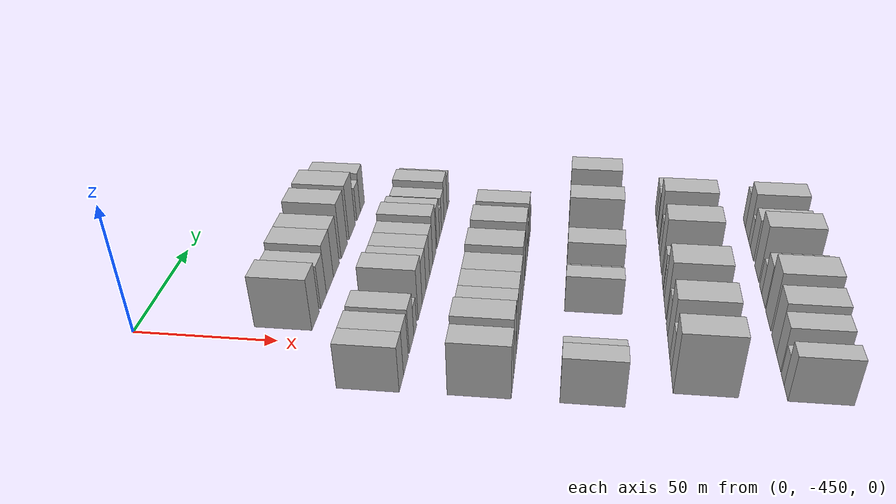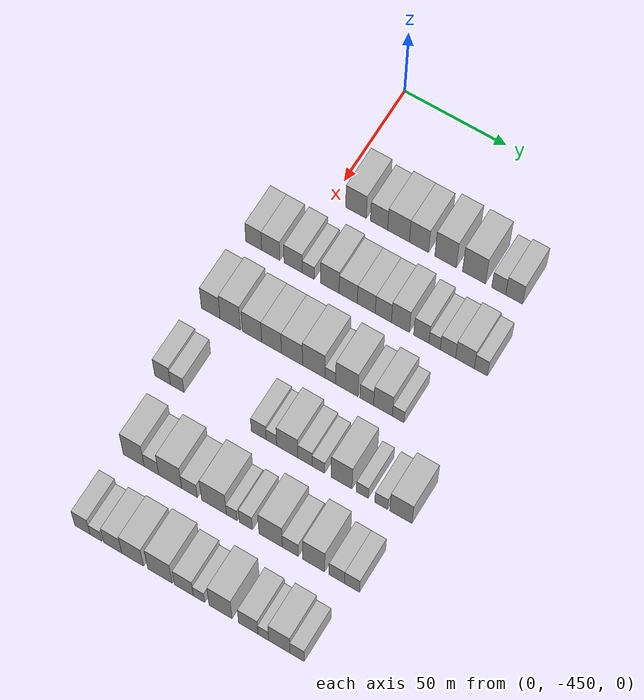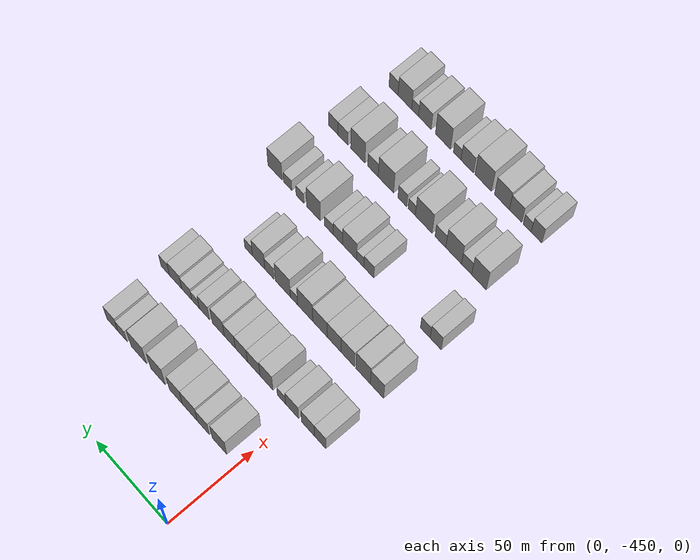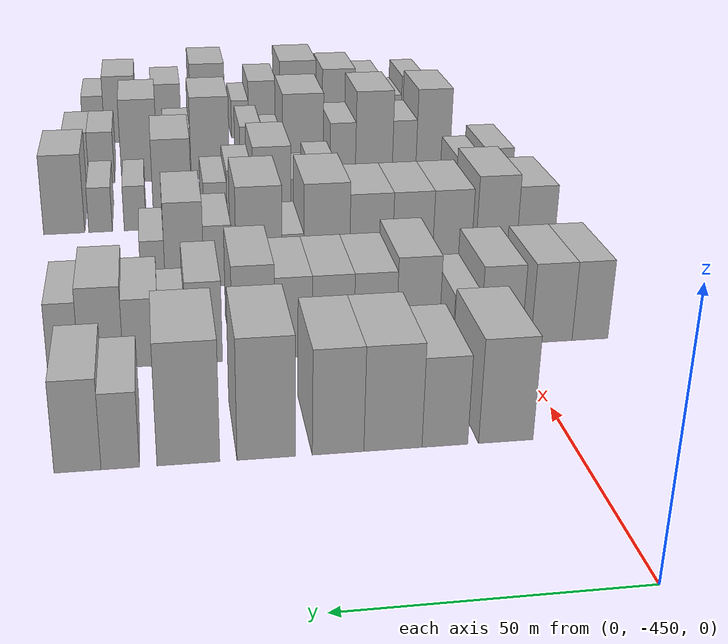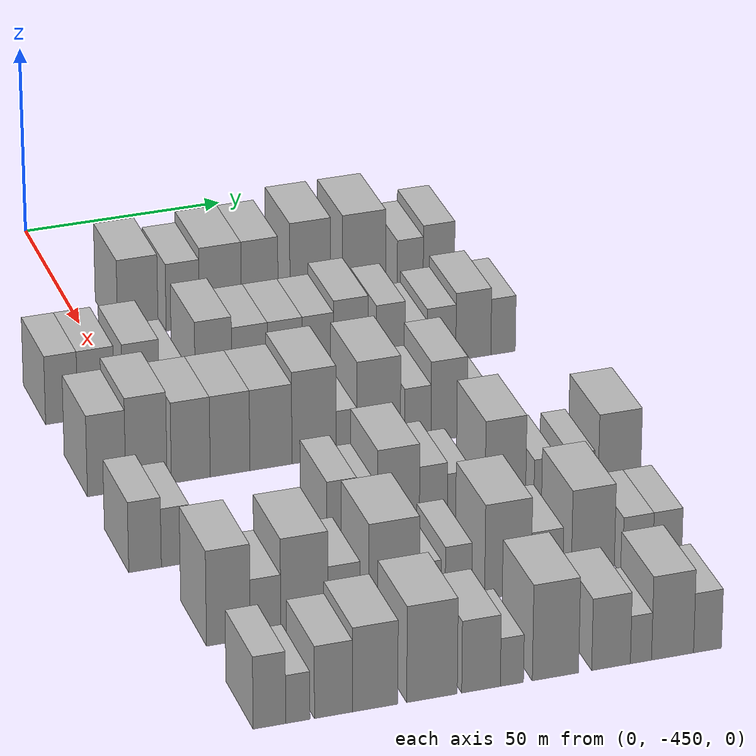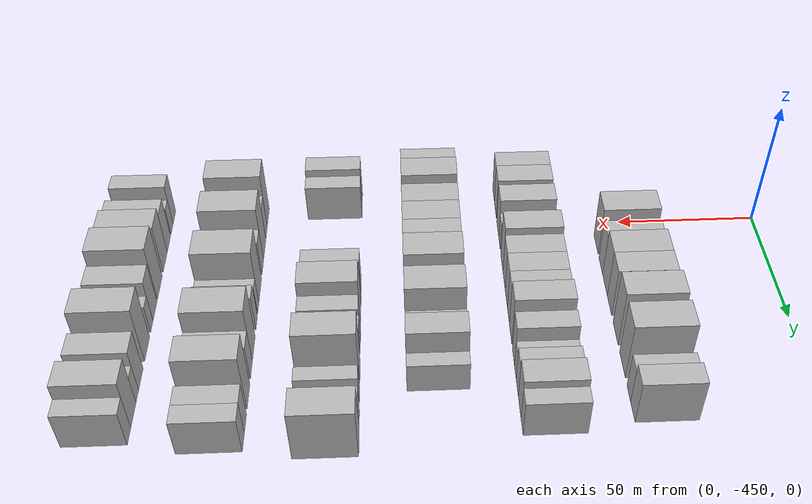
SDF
<sdf version="1.6">
 <world name="default">
  <model name="building_11">
   <static>1</static>
   <pose>50.0000 -438.2987 0 0.000000 0.000000 0.000000</pose>
   <link name="link">
    <pose>0 0 10.50 0 0 0</pose>
    <collision name="collision"><geometry><box><size>20.0000 10.0197 21.0000</size></box></geometry></collision>
    <visual name="visual">
     <cast_shadows>0</cast_shadows>
     <geometry><box><size>20.0000 10.0197 21.0000</size></box></geometry>
     <material>
      <script>
       <uri>model://HANNAS_wall/materials/scripts</uri>
       <uri>model://HANNAS_wall/materials/textures</uri>
       <name>vrc/HANNAS_wall</name>
      </script>
     </material>
    </visual>
   </link>
  </model>
  <model name="building_12">
   <static>1</static>
   <pose>50.0000 -427.1244 0 0.000000 0.000000 0.000000</pose>
   <link name="link">
    <pose>0 0 9.00 0 0 0</pose>
    <collision name="collision"><geometry><box><size>20.0000 8.3288 18.0000</size></box></geometry></collision>
    <visual name="visual">
     <cast_shadows>0</cast_shadows>
     <geometry><box><size>20.0000 8.3288 18.0000</size></box></geometry>
     <material>
      <script>
       <uri>model://HANNAS_wall/materials/scripts</uri>
       <uri>model://HANNAS_wall/materials/textures</uri>
       <name>vrc/HANNAS_wall</name>
      </script>
     </material>
    </visual>
   </link>
  </model>
  <model name="building_13">
   <static>1</static>
   <pose>50.0000 -417.7253 0 0.000000 0.000000 0.000000</pose>
   <link name="link">
    <pose>0 0 10.50 0 0 0</pose>
    <collision name="collision"><geometry><box><size>20.0000 10.4695 21.0000</size></box></geometry></collision>
    <visual name="visual">
     <cast_shadows>0</cast_shadows>
     <geometry><box><size>20.0000 10.4695 21.0000</size></box></geometry>
     <material>
      <script>
       <uri>model://HANNAS_wall/materials/scripts</uri>
       <uri>model://HANNAS_wall/materials/textures</uri>
       <name>vrc/HANNAS_wall</name>
      </script>
     </material>
    </visual>
   </link>
  </model>
  <model name="building_14">
   <static>1</static>
   <pose>50.0000 -407.8832 0 0.000000 0.000000 0.000000</pose>
   <link name="link">
    <pose>0 0 10.50 0 0 0</pose>
    <collision name="collision"><geometry><box><size>20.0000 9.2147 21.0000</size></box></geometry></collision>
    <visual name="visual">
     <cast_shadows>0</cast_shadows>
     <geometry><box><size>20.0000 9.2147 21.0000</size></box></geometry>
     <material>
      <script>
       <uri>model://HANNAS_wall/materials/scripts</uri>
       <uri>model://HANNAS_wall/materials/textures</uri>
       <name>vrc/HANNAS_wall</name>
      </script>
     </material>
    </visual>
   </link>
  </model>
  <model name="building_15">
   <static>1</static>
   <pose>50.0000 -395.1461 0 0.000000 0.000000 0.000000</pose>
   <link name="link">
    <pose>0 0 12.00 0 0 0</pose>
    <collision name="collision"><geometry><box><size>20.0000 10.2595 24.0000</size></box></geometry></collision>
    <visual name="visual">
     <cast_shadows>0</cast_shadows>
     <geometry><box><size>20.0000 10.2595 24.0000</size></box></geometry>
     <material>
      <script>
       <uri>model://HANNAS_wall/materials/scripts</uri>
       <uri>model://HANNAS_wall/materials/textures</uri>
       <name>vrc/HANNAS_wall</name>
      </script>
     </material>
    </visual>
   </link>
  </model>
  <model name="building_16">
   <static>1</static>
   <pose>50.0000 -381.5667 0 0.000000 0.000000 0.000000</pose>
   <link name="link">
    <pose>0 0 12.00 0 0 0</pose>
    <collision name="collision"><geometry><box><size>20.0000 10.8994 24.0000</size></box></geometry></collision>
    <visual name="visual">
     <cast_shadows>0</cast_shadows>
     <geometry><box><size>20.0000 10.8994 24.0000</size></box></geometry>
     <material>
      <script>
       <uri>model://HANNAS_wall/materials/scripts</uri>
       <uri>model://HANNAS_wall/materials/textures</uri>
       <name>vrc/HANNAS_wall</name>
      </script>
     </material>
    </visual>
   </link>
  </model>
  <model name="building_17">
   <static>1</static>
   <pose>50.0000 -369.8226 0 0.000000 0.000000 0.000000</pose>
   <link name="link">
    <pose>0 0 7.50 0 0 0</pose>
    <collision name="collision"><geometry><box><size>20.0000 6.5887 15.0000</size></box></geometry></collision>
    <visual name="visual">
     <cast_shadows>0</cast_shadows>
     <geometry><box><size>20.0000 6.5887 15.0000</size></box></geometry>
     <material>
      <script>
       <uri>model://HANNAS_wall/materials/scripts</uri>
       <uri>model://HANNAS_wall/materials/textures</uri>
       <name>vrc/HANNAS_wall</name>
      </script>
     </material>
    </visual>
   </link>
  </model>
  <model name="building_18">
   <static>1</static>
   <pose>50.0000 -362.5325 0 0.000000 0.000000 0.000000</pose>
   <link name="link">
    <pose>0 0 9.00 0 0 0</pose>
    <collision name="collision"><geometry><box><size>20.0000 7.9915 18.0000</size></box></geometry></collision>
    <visual name="visual">
     <cast_shadows>0</cast_shadows>
     <geometry><box><size>20.0000 7.9915 18.0000</size></box></geometry>
     <material>
      <script>
       <uri>model://HANNAS_wall/materials/scripts</uri>
       <uri>model://HANNAS_wall/materials/textures</uri>
       <name>vrc/HANNAS_wall</name>
      </script>
     </material>
    </visual>
   </link>
  </model>
  <model name="building_136">
   <static>1</static>
   <pose>85.0000 -466.7669 0 0.000000 0.000000 0.000000</pose>
   <link name="link">
    <pose>0 0 9.00 0 0 0</pose>
    <collision name="collision"><geometry><box><size>20.0000 7.7516 18.0000</size></box></geometry></collision>
    <visual name="visual">
     <cast_shadows>0</cast_shadows>
     <geometry><box><size>20.0000 7.7516 18.0000</size></box></geometry>
     <material>
      <script>
       <uri>model://HANNAS_wall/materials/scripts</uri>
       <uri>model://HANNAS_wall/materials/textures</uri>
       <name>vrc/HANNAS_wall</name>
      </script>
     </material>
    </visual>
   </link>
  </model>
  <model name="building_137">
   <static>1</static>
   <pose>85.0000 -458.4582 0 0.000000 0.000000 0.000000</pose>
   <link name="link">
    <pose>0 0 9.00 0 0 0</pose>
    <collision name="collision"><geometry><box><size>20.0000 8.8658 18.0000</size></box></geometry></collision>
    <visual name="visual">
     <cast_shadows>0</cast_shadows>
     <geometry><box><size>20.0000 8.8658 18.0000</size></box></geometry>
     <material>
      <script>
       <uri>model://HANNAS_wall/materials/scripts</uri>
       <uri>model://HANNAS_wall/materials/textures</uri>
       <name>vrc/HANNAS_wall</name>
      </script>
     </material>
    </visual>
   </link>
  </model>
  <model name="building_138">
   <static>1</static>
   <pose>85.0000 -447.5859 0 0.000000 0.000000 0.000000</pose>
   <link name="link">
    <pose>0 0 9.00 0 0 0</pose>
    <collision name="collision"><geometry><box><size>20.0000 8.8788 18.0000</size></box></geometry></collision>
    <visual name="visual">
     <cast_shadows>0</cast_shadows>
     <geometry><box><size>20.0000 8.8788 18.0000</size></box></geometry>
     <material>
      <script>
       <uri>model://HANNAS_wall/materials/scripts</uri>
       <uri>model://HANNAS_wall/materials/textures</uri>
       <name>vrc/HANNAS_wall</name>
      </script>
     </material>
    </visual>
   </link>
  </model>
  <model name="building_139">
   <static>1</static>
   <pose>85.0000 -440.2610 0 0.000000 0.000000 0.000000</pose>
   <link name="link">
    <pose>0 0 6.00 0 0 0</pose>
    <collision name="collision"><geometry><box><size>20.0000 5.7711 12.0000</size></box></geometry></collision>
    <visual name="visual">
     <cast_shadows>0</cast_shadows>
     <geometry><box><size>20.0000 5.7711 12.0000</size></box></geometry>
     <material>
      <script>
       <uri>model://HANNAS_wall/materials/scripts</uri>
       <uri>model://HANNAS_wall/materials/textures</uri>
       <name>vrc/HANNAS_wall</name>
      </script>
     </material>
    </visual>
   </link>
  </model>
  <model name="building_140">
   <static>1</static>
   <pose>85.0000 -429.9075 0 0.000000 0.000000 0.000000</pose>
   <link name="link">
    <pose>0 0 10.50 0 0 0</pose>
    <collision name="collision"><geometry><box><size>20.0000 8.9358 21.0000</size></box></geometry></collision>
    <visual name="visual">
     <cast_shadows>0</cast_shadows>
     <geometry><box><size>20.0000 8.9358 21.0000</size></box></geometry>
     <material>
      <script>
       <uri>model://HANNAS_wall/materials/scripts</uri>
       <uri>model://HANNAS_wall/materials/textures</uri>
       <name>vrc/HANNAS_wall</name>
      </script>
     </material>
    </visual>
   </link>
  </model>
  <model name="building_141">
   <static>1</static>
   <pose>85.0000 -421.0649 0 0.000000 0.000000 0.000000</pose>
   <link name="link">
    <pose>0 0 9.00 0 0 0</pose>
    <collision name="collision"><geometry><box><size>20.0000 8.7495 18.0000</size></box></geometry></collision>
    <visual name="visual">
     <cast_shadows>0</cast_shadows>
     <geometry><box><size>20.0000 8.7495 18.0000</size></box></geometry>
     <material>
      <script>
       <uri>model://HANNAS_wall/materials/scripts</uri>
       <uri>model://HANNAS_wall/materials/textures</uri>
       <name>vrc/HANNAS_wall</name>
      </script>
     </material>
    </visual>
   </link>
  </model>
  <model name="building_142">
   <static>1</static>
   <pose>85.0000 -412.4148 0 0.000000 0.000000 0.000000</pose>
   <link name="link">
    <pose>0 0 9.00 0 0 0</pose>
    <collision name="collision"><geometry><box><size>20.0000 8.5507 18.0000</size></box></geometry></collision>
    <visual name="visual">
     <cast_shadows>0</cast_shadows>
     <geometry><box><size>20.0000 8.5507 18.0000</size></box></geometry>
     <material>
      <script>
       <uri>model://HANNAS_wall/materials/scripts</uri>
       <uri>model://HANNAS_wall/materials/textures</uri>
       <name>vrc/HANNAS_wall</name>
      </script>
     </material>
    </visual>
   </link>
  </model>
  <model name="building_143">
   <static>1</static>
   <pose>85.0000 -404.3010 0 0.000000 0.000000 0.000000</pose>
   <link name="link">
    <pose>0 0 9.00 0 0 0</pose>
    <collision name="collision"><geometry><box><size>20.0000 7.6769 18.0000</size></box></geometry></collision>
    <visual name="visual">
     <cast_shadows>0</cast_shadows>
     <geometry><box><size>20.0000 7.6769 18.0000</size></box></geometry>
     <material>
      <script>
       <uri>model://HANNAS_wall/materials/scripts</uri>
       <uri>model://HANNAS_wall/materials/textures</uri>
       <name>vrc/HANNAS_wall</name>
      </script>
     </material>
    </visual>
   </link>
  </model>
  <model name="building_144">
   <static>1</static>
   <pose>85.0000 -396.1701 0 0.000000 0.000000 0.000000</pose>
   <link name="link">
    <pose>0 0 10.50 0 0 0</pose>
    <collision name="collision"><geometry><box><size>20.0000 8.5849 21.0000</size></box></geometry></collision>
    <visual name="visual">
     <cast_shadows>0</cast_shadows>
     <geometry><box><size>20.0000 8.5849 21.0000</size></box></geometry>
     <material>
      <script>
       <uri>model://HANNAS_wall/materials/scripts</uri>
       <uri>model://HANNAS_wall/materials/textures</uri>
       <name>vrc/HANNAS_wall</name>
      </script>
     </material>
    </visual>
   </link>
  </model>
  <model name="building_145">
   <static>1</static>
   <pose>85.0000 -386.2719 0 0.000000 0.000000 0.000000</pose>
   <link name="link">
    <pose>0 0 9.00 0 0 0</pose>
    <collision name="collision"><geometry><box><size>20.0000 7.2113 18.0000</size></box></geometry></collision>
    <visual name="visual">
     <cast_shadows>0</cast_shadows>
     <geometry><box><size>20.0000 7.2113 18.0000</size></box></geometry>
     <material>
      <script>
       <uri>model://HANNAS_wall/materials/scripts</uri>
       <uri>model://HANNAS_wall/materials/textures</uri>
       <name>vrc/HANNAS_wall</name>
      </script>
     </material>
    </visual>
   </link>
  </model>
  <model name="building_146">
   <static>1</static>
   <pose>85.0000 -379.9864 0 0.000000 0.000000 0.000000</pose>
   <link name="link">
    <pose>0 0 6.00 0 0 0</pose>
    <collision name="collision"><geometry><box><size>20.0000 5.3597 12.0000</size></box></geometry></collision>
    <visual name="visual">
     <cast_shadows>0</cast_shadows>
     <geometry><box><size>20.0000 5.3597 12.0000</size></box></geometry>
     <material>
      <script>
       <uri>model://HANNAS_wall/materials/scripts</uri>
       <uri>model://HANNAS_wall/materials/textures</uri>
       <name>vrc/HANNAS_wall</name>
      </script>
     </material>
    </visual>
   </link>
  </model>
  <model name="building_147">
   <static>1</static>
   <pose>85.0000 -373.6903 0 0.000000 0.000000 0.000000</pose>
   <link name="link">
    <pose>0 0 7.50 0 0 0</pose>
    <collision name="collision"><geometry><box><size>20.0000 7.2324 15.0000</size></box></geometry></collision>
    <visual name="visual">
     <cast_shadows>0</cast_shadows>
     <geometry><box><size>20.0000 7.2324 15.0000</size></box></geometry>
     <material>
      <script>
       <uri>model://HANNAS_wall/materials/scripts</uri>
       <uri>model://HANNAS_wall/materials/textures</uri>
       <name>vrc/HANNAS_wall</name>
      </script>
     </material>
    </visual>
   </link>
  </model>
  <model name="building_148">
   <static>1</static>
   <pose>85.0000 -365.6812 0 0.000000 0.000000 0.000000</pose>
   <link name="link">
    <pose>0 0 9.00 0 0 0</pose>
    <collision name="collision"><geometry><box><size>20.0000 8.7858 18.0000</size></box></geometry></collision>
    <visual name="visual">
     <cast_shadows>0</cast_shadows>
     <geometry><box><size>20.0000 8.7858 18.0000</size></box></geometry>
     <material>
      <script>
       <uri>model://HANNAS_wall/materials/scripts</uri>
       <uri>model://HANNAS_wall/materials/textures</uri>
       <name>vrc/HANNAS_wall</name>
      </script>
     </material>
    </visual>
   </link>
  </model>
  <model name="building_149">
   <static>1</static>
   <pose>85.0000 -358.2171 0 0.000000 0.000000 0.000000</pose>
   <link name="link">
    <pose>0 0 7.50 0 0 0</pose>
    <collision name="collision"><geometry><box><size>20.0000 6.1424 15.0000</size></box></geometry></collision>
    <visual name="visual">
     <cast_shadows>0</cast_shadows>
     <geometry><box><size>20.0000 6.1424 15.0000</size></box></geometry>
     <material>
      <script>
       <uri>model://HANNAS_wall/materials/scripts</uri>
       <uri>model://HANNAS_wall/materials/textures</uri>
       <name>vrc/HANNAS_wall</name>
      </script>
     </material>
    </visual>
   </link>
  </model>
  <model name="building_263">
   <static>1</static>
   <pose>120.0000 -465.7614 0 0.000000 0.000000 0.000000</pose>
   <link name="link">
    <pose>0 0 10.50 0 0 0</pose>
    <collision name="collision"><geometry><box><size>20.0000 9.0671 21.0000</size></box></geometry></collision>
    <visual name="visual">
     <cast_shadows>0</cast_shadows>
     <geometry><box><size>20.0000 9.0671 21.0000</size></box></geometry>
     <material>
      <script>
       <uri>model://HANNAS_wall/materials/scripts</uri>
       <uri>model://HANNAS_wall/materials/textures</uri>
       <name>vrc/HANNAS_wall</name>
      </script>
     </material>
    </visual>
   </link>
  </model>
  <model name="building_264">
   <static>1</static>
   <pose>120.0000 -456.3356 0 0.000000 0.000000 0.000000</pose>
   <link name="link">
    <pose>0 0 12.00 0 0 0</pose>
    <collision name="collision"><geometry><box><size>20.0000 9.7847 24.0000</size></box></geometry></collision>
    <visual name="visual">
     <cast_shadows>0</cast_shadows>
     <geometry><box><size>20.0000 9.7847 24.0000</size></box></geometry>
     <material>
      <script>
       <uri>model://HANNAS_wall/materials/scripts</uri>
       <uri>model://HANNAS_wall/materials/textures</uri>
       <name>vrc/HANNAS_wall</name>
      </script>
     </material>
    </visual>
   </link>
  </model>
  <model name="building_265">
   <static>1</static>
   <pose>120.0000 -445.8211 0 0.000000 0.000000 0.000000</pose>
   <link name="link">
    <pose>0 0 10.50 0 0 0</pose>
    <collision name="collision"><geometry><box><size>20.0000 9.2442 21.0000</size></box></geometry></collision>
    <visual name="visual">
     <cast_shadows>0</cast_shadows>
     <geometry><box><size>20.0000 9.2442 21.0000</size></box></geometry>
     <material>
      <script>
       <uri>model://HANNAS_wall/materials/scripts</uri>
       <uri>model://HANNAS_wall/materials/textures</uri>
       <name>vrc/HANNAS_wall</name>
      </script>
     </material>
    </visual>
   </link>
  </model>
  <model name="building_266">
   <static>1</static>
   <pose>120.0000 -436.4629 0 0.000000 0.000000 0.000000</pose>
   <link name="link">
    <pose>0 0 10.50 0 0 0</pose>
    <collision name="collision"><geometry><box><size>20.0000 9.4722 21.0000</size></box></geometry></collision>
    <visual name="visual">
     <cast_shadows>0</cast_shadows>
     <geometry><box><size>20.0000 9.4722 21.0000</size></box></geometry>
     <material>
      <script>
       <uri>model://HANNAS_wall/materials/scripts</uri>
       <uri>model://HANNAS_wall/materials/textures</uri>
       <name>vrc/HANNAS_wall</name>
      </script>
     </material>
    </visual>
   </link>
  </model>
  <model name="building_267">
   <static>1</static>
   <pose>120.0000 -426.6934 0 0.000000 0.000000 0.000000</pose>
   <link name="link">
    <pose>0 0 10.50 0 0 0</pose>
    <collision name="collision"><geometry><box><size>20.0000 10.0666 21.0000</size></box></geometry></collision>
    <visual name="visual">
     <cast_shadows>0</cast_shadows>
     <geometry><box><size>20.0000 10.0666 21.0000</size></box></geometry>
     <material>
      <script>
       <uri>model://HANNAS_wall/materials/scripts</uri>
       <uri>model://HANNAS_wall/materials/textures</uri>
       <name>vrc/HANNAS_wall</name>
      </script>
     </material>
    </visual>
   </link>
  </model>
  <model name="building_268">
   <static>1</static>
   <pose>120.0000 -416.3464 0 0.000000 0.000000 0.000000</pose>
   <link name="link">
    <pose>0 0 12.00 0 0 0</pose>
    <collision name="collision"><geometry><box><size>20.0000 10.6274 24.0000</size></box></geometry></collision>
    <visual name="visual">
     <cast_shadows>0</cast_shadows>
     <geometry><box><size>20.0000 10.6274 24.0000</size></box></geometry>
     <material>
      <script>
       <uri>model://HANNAS_wall/materials/scripts</uri>
       <uri>model://HANNAS_wall/materials/textures</uri>
       <name>vrc/HANNAS_wall</name>
      </script>
     </material>
    </visual>
   </link>
  </model>
  <model name="building_269">
   <static>1</static>
   <pose>120.0000 -408.5070 0 0.000000 0.000000 0.000000</pose>
   <link name="link">
    <pose>0 0 6.00 0 0 0</pose>
    <collision name="collision"><geometry><box><size>20.0000 5.0515 12.0000</size></box></geometry></collision>
    <visual name="visual">
     <cast_shadows>0</cast_shadows>
     <geometry><box><size>20.0000 5.0515 12.0000</size></box></geometry>
     <material>
      <script>
       <uri>model://HANNAS_wall/materials/scripts</uri>
       <uri>model://HANNAS_wall/materials/textures</uri>
       <name>vrc/HANNAS_wall</name>
      </script>
     </material>
    </visual>
   </link>
  </model>
  <model name="building_270">
   <static>1</static>
   <pose>120.0000 -400.7196 0 0.000000 0.000000 0.000000</pose>
   <link name="link">
    <pose>0 0 12.00 0 0 0</pose>
    <collision name="collision"><geometry><box><size>20.0000 10.5233 24.0000</size></box></geometry></collision>
    <visual name="visual">
     <cast_shadows>0</cast_shadows>
     <geometry><box><size>20.0000 10.5233 24.0000</size></box></geometry>
     <material>
      <script>
       <uri>model://HANNAS_wall/materials/scripts</uri>
       <uri>model://HANNAS_wall/materials/textures</uri>
       <name>vrc/HANNAS_wall</name>
      </script>
     </material>
    </visual>
   </link>
  </model>
  <model name="building_271">
   <static>1</static>
   <pose>120.0000 -391.2503 0 0.000000 0.000000 0.000000</pose>
   <link name="link">
    <pose>0 0 7.50 0 0 0</pose>
    <collision name="collision"><geometry><box><size>20.0000 6.4152 15.0000</size></box></geometry></collision>
    <visual name="visual">
     <cast_shadows>0</cast_shadows>
     <geometry><box><size>20.0000 6.4152 15.0000</size></box></geometry>
     <material>
      <script>
       <uri>model://HANNAS_wall/materials/scripts</uri>
       <uri>model://HANNAS_wall/materials/textures</uri>
       <name>vrc/HANNAS_wall</name>
      </script>
     </material>
    </visual>
   </link>
  </model>
  <model name="building_272">
   <static>1</static>
   <pose>120.0000 -383.6450 0 0.000000 0.000000 0.000000</pose>
   <link name="link">
    <pose>0 0 10.50 0 0 0</pose>
    <collision name="collision"><geometry><box><size>20.0000 8.7955 21.0000</size></box></geometry></collision>
    <visual name="visual">
     <cast_shadows>0</cast_shadows>
     <geometry><box><size>20.0000 8.7955 21.0000</size></box></geometry>
     <material>
      <script>
       <uri>model://HANNAS_wall/materials/scripts</uri>
       <uri>model://HANNAS_wall/materials/textures</uri>
       <name>vrc/HANNAS_wall</name>
      </script>
     </material>
    </visual>
   </link>
  </model>
  <model name="building_273">
   <static>1</static>
   <pose>120.0000 -376.5155 0 0.000000 0.000000 0.000000</pose>
   <link name="link">
    <pose>0 0 6.00 0 0 0</pose>
    <collision name="collision"><geometry><box><size>20.0000 5.4633 12.0000</size></box></geometry></collision>
    <visual name="visual">
     <cast_shadows>0</cast_shadows>
     <geometry><box><size>20.0000 5.4633 12.0000</size></box></geometry>
     <material>
      <script>
       <uri>model://HANNAS_wall/materials/scripts</uri>
       <uri>model://HANNAS_wall/materials/textures</uri>
       <name>vrc/HANNAS_wall</name>
      </script>
     </material>
    </visual>
   </link>
  </model>
  <model name="building_385">
   <static>1</static>
   <pose>155.0000 -466.7608 0 0.000000 0.000000 0.000000</pose>
   <link name="link">
    <pose>0 0 9.00 0 0 0</pose>
    <collision name="collision"><geometry><box><size>20.0000 7.5381 18.0000</size></box></geometry></collision>
    <visual name="visual">
     <cast_shadows>0</cast_shadows>
     <geometry><box><size>20.0000 7.5381 18.0000</size></box></geometry>
     <material>
      <script>
       <uri>model://HANNAS_wall/materials/scripts</uri>
       <uri>model://HANNAS_wall/materials/textures</uri>
       <name>vrc/HANNAS_wall</name>
      </script>
     </material>
    </visual>
   </link>
  </model>
  <model name="building_386">
   <static>1</static>
   <pose>155.0000 -459.6958 0 0.000000 0.000000 0.000000</pose>
   <link name="link">
    <pose>0 0 7.50 0 0 0</pose>
    <collision name="collision"><geometry><box><size>20.0000 6.5917 15.0000</size></box></geometry></collision>
    <visual name="visual">
     <cast_shadows>0</cast_shadows>
     <geometry><box><size>20.0000 6.5917 15.0000</size></box></geometry>
     <material>
      <script>
       <uri>model://HANNAS_wall/materials/scripts</uri>
       <uri>model://HANNAS_wall/materials/textures</uri>
       <name>vrc/HANNAS_wall</name>
      </script>
     </material>
    </visual>
   </link>
  </model>
  <model name="building_387">
   <static>1</static>
   <pose>155.0000 -420.8927 0 0.000000 0.000000 0.000000</pose>
   <link name="link">
    <pose>0 0 7.50 0 0 0</pose>
    <collision name="collision"><geometry><box><size>20.0000 7.0048 15.0000</size></box></geometry></collision>
    <visual name="visual">
     <cast_shadows>0</cast_shadows>
     <geometry><box><size>20.0000 7.0048 15.0000</size></box></geometry>
     <material>
      <script>
       <uri>model://HANNAS_wall/materials/scripts</uri>
       <uri>model://HANNAS_wall/materials/textures</uri>
       <name>vrc/HANNAS_wall</name>
      </script>
     </material>
    </visual>
   </link>
  </model>
  <model name="building_388">
   <static>1</static>
   <pose>155.0000 -414.8956 0 0.000000 0.000000 0.000000</pose>
   <link name="link">
    <pose>0 0 6.00 0 0 0</pose>
    <collision name="collision"><geometry><box><size>20.0000 4.9894 12.0000</size></box></geometry></collision>
    <visual name="visual">
     <cast_shadows>0</cast_shadows>
     <geometry><box><size>20.0000 4.9894 12.0000</size></box></geometry>
     <material>
      <script>
       <uri>model://HANNAS_wall/materials/scripts</uri>
       <uri>model://HANNAS_wall/materials/textures</uri>
       <name>vrc/HANNAS_wall</name>
      </script>
     </material>
    </visual>
   </link>
  </model>
  <model name="building_389">
   <static>1</static>
   <pose>155.0000 -407.4630 0 0.000000 0.000000 0.000000</pose>
   <link name="link">
    <pose>0 0 10.50 0 0 0</pose>
    <collision name="collision"><geometry><box><size>20.0000 9.8758 21.0000</size></box></geometry></collision>
    <visual name="visual">
     <cast_shadows>0</cast_shadows>
     <geometry><box><size>20.0000 9.8758 21.0000</size></box></geometry>
     <material>
      <script>
       <uri>model://HANNAS_wall/materials/scripts</uri>
       <uri>model://HANNAS_wall/materials/textures</uri>
       <name>vrc/HANNAS_wall</name>
      </script>
     </material>
    </visual>
   </link>
  </model>
  <model name="building_390">
   <static>1</static>
   <pose>155.0000 -399.1991 0 0.000000 0.000000 0.000000</pose>
   <link name="link">
    <pose>0 0 7.50 0 0 0</pose>
    <collision name="collision"><geometry><box><size>20.0000 6.6518 15.0000</size></box></geometry></collision>
    <visual name="visual">
     <cast_shadows>0</cast_shadows>
     <geometry><box><size>20.0000 6.6518 15.0000</size></box></geometry>
     <material>
      <script>
       <uri>model://HANNAS_wall/materials/scripts</uri>
       <uri>model://HANNAS_wall/materials/textures</uri>
       <name>vrc/HANNAS_wall</name>
      </script>
     </material>
    </visual>
   </link>
  </model>
  <model name="building_391">
   <static>1</static>
   <pose>155.0000 -392.9006 0 0.000000 0.000000 0.000000</pose>
   <link name="link">
    <pose>0 0 6.00 0 0 0</pose>
    <collision name="collision"><geometry><box><size>20.0000 5.9453 12.0000</size></box></geometry></collision>
    <visual name="visual">
     <cast_shadows>0</cast_shadows>
     <geometry><box><size>20.0000 5.9453 12.0000</size></box></geometry>
     <material>
      <script>
       <uri>model://HANNAS_wall/materials/scripts</uri>
       <uri>model://HANNAS_wall/materials/textures</uri>
       <name>vrc/HANNAS_wall</name>
      </script>
     </material>
    </visual>
   </link>
  </model>
  <model name="building_392">
   <static>1</static>
   <pose>155.0000 -382.0707 0 0.000000 0.000000 0.000000</pose>
   <link name="link">
    <pose>0 0 12.00 0 0 0</pose>
    <collision name="collision"><geometry><box><size>20.0000 9.7144 24.0000</size></box></geometry></collision>
    <visual name="visual">
     <cast_shadows>0</cast_shadows>
     <geometry><box><size>20.0000 9.7144 24.0000</size></box></geometry>
     <material>
      <script>
       <uri>model://HANNAS_wall/materials/scripts</uri>
       <uri>model://HANNAS_wall/materials/textures</uri>
       <name>vrc/HANNAS_wall</name>
      </script>
     </material>
    </visual>
   </link>
  </model>
  <model name="building_393">
   <static>1</static>
   <pose>155.0000 -372.4449 0 0.000000 0.000000 0.000000</pose>
   <link name="link">
    <pose>0 0 6.00 0 0 0</pose>
    <collision name="collision"><geometry><box><size>20.0000 5.5372 12.0000</size></box></geometry></collision>
    <visual name="visual">
     <cast_shadows>0</cast_shadows>
     <geometry><box><size>20.0000 5.5372 12.0000</size></box></geometry>
     <material>
      <script>
       <uri>model://HANNAS_wall/materials/scripts</uri>
       <uri>model://HANNAS_wall/materials/textures</uri>
       <name>vrc/HANNAS_wall</name>
      </script>
     </material>
    </visual>
   </link>
  </model>
  <model name="building_394">
   <static>1</static>
   <pose>155.0000 -363.7154 0 0.000000 0.000000 0.000000</pose>
   <link name="link">
    <pose>0 0 6.00 0 0 0</pose>
    <collision name="collision"><geometry><box><size>20.0000 5.9218 12.0000</size></box></geometry></collision>
    <visual name="visual">
     <cast_shadows>0</cast_shadows>
     <geometry><box><size>20.0000 5.9218 12.0000</size></box></geometry>
     <material>
      <script>
       <uri>model://HANNAS_wall/materials/scripts</uri>
       <uri>model://HANNAS_wall/materials/textures</uri>
       <name>vrc/HANNAS_wall</name>
      </script>
     </material>
    </visual>
   </link>
  </model>
  <model name="building_395">
   <static>1</static>
   <pose>155.0000 -354.6315 0 0.000000 0.000000 0.000000</pose>
   <link name="link">
    <pose>0 0 10.50 0 0 0</pose>
    <collision name="collision"><geometry><box><size>20.0000 10.2461 21.0000</size></box></geometry></collision>
    <visual name="visual">
     <cast_shadows>0</cast_shadows>
     <geometry><box><size>20.0000 10.2461 21.0000</size></box></geometry>
     <material>
      <script>
       <uri>model://HANNAS_wall/materials/scripts</uri>
       <uri>model://HANNAS_wall/materials/textures</uri>
       <name>vrc/HANNAS_wall</name>
      </script>
     </material>
    </visual>
   </link>
  </model>
  <model name="building_507">
   <static>1</static>
   <pose>190.0000 -457.9629 0 0.000000 0.000000 0.000000</pose>
   <link name="link">
    <pose>0 0 12.00 0 0 0</pose>
    <collision name="collision"><geometry><box><size>20.0000 9.9477 24.0000</size></box></geometry></collision>
    <visual name="visual">
     <cast_shadows>0</cast_shadows>
     <geometry><box><size>20.0000 9.9477 24.0000</size></box></geometry>
     <material>
      <script>
       <uri>model://HANNAS_wall/materials/scripts</uri>
       <uri>model://HANNAS_wall/materials/textures</uri>
       <name>vrc/HANNAS_wall</name>
      </script>
     </material>
    </visual>
   </link>
  </model>
  <model name="building_508">
   <static>1</static>
   <pose>190.0000 -449.5256 0 0.000000 0.000000 0.000000</pose>
   <link name="link">
    <pose>0 0 7.50 0 0 0</pose>
    <collision name="collision"><geometry><box><size>20.0000 6.9267 15.0000</size></box></geometry></collision>
    <visual name="visual">
     <cast_shadows>0</cast_shadows>
     <geometry><box><size>20.0000 6.9267 15.0000</size></box></geometry>
     <material>
      <script>
       <uri>model://HANNAS_wall/materials/scripts</uri>
       <uri>model://HANNAS_wall/materials/textures</uri>
       <name>vrc/HANNAS_wall</name>
      </script>
     </material>
    </visual>
   </link>
  </model>
  <model name="building_509">
   <static>1</static>
   <pose>190.0000 -440.6702 0 0.000000 0.000000 0.000000</pose>
   <link name="link">
    <pose>0 0 12.00 0 0 0</pose>
    <collision name="collision"><geometry><box><size>20.0000 10.7841 24.0000</size></box></geometry></collision>
    <visual name="visual">
     <cast_shadows>0</cast_shadows>
     <geometry><box><size>20.0000 10.7841 24.0000</size></box></geometry>
     <material>
      <script>
       <uri>model://HANNAS_wall/materials/scripts</uri>
       <uri>model://HANNAS_wall/materials/textures</uri>
       <name>vrc/HANNAS_wall</name>
      </script>
     </material>
    </visual>
   </link>
  </model>
  <model name="building_510">
   <static>1</static>
   <pose>190.0000 -431.5756 0 0.000000 0.000000 0.000000</pose>
   <link name="link">
    <pose>0 0 7.50 0 0 0</pose>
    <collision name="collision"><geometry><box><size>20.0000 7.4050 15.0000</size></box></geometry></collision>
    <visual name="visual">
     <cast_shadows>0</cast_shadows>
     <geometry><box><size>20.0000 7.4050 15.0000</size></box></geometry>
     <material>
      <script>
       <uri>model://HANNAS_wall/materials/scripts</uri>
       <uri>model://HANNAS_wall/materials/textures</uri>
       <name>vrc/HANNAS_wall</name>
      </script>
     </material>
    </visual>
   </link>
  </model>
  <model name="building_511">
   <static>1</static>
   <pose>190.0000 -420.0548 0 0.000000 0.000000 0.000000</pose>
   <link name="link">
    <pose>0 0 12.00 0 0 0</pose>
    <collision name="collision"><geometry><box><size>20.0000 11.6368 24.0000</size></box></geometry></collision>
    <visual name="visual">
     <cast_shadows>0</cast_shadows>
     <geometry><box><size>20.0000 11.6368 24.0000</size></box></geometry>
     <material>
      <script>
       <uri>model://HANNAS_wall/materials/scripts</uri>
       <uri>model://HANNAS_wall/materials/textures</uri>
       <name>vrc/HANNAS_wall</name>
      </script>
     </material>
    </visual>
   </link>
  </model>
  <model name="building_512">
   <static>1</static>
   <pose>190.0000 -411.7450 0 0.000000 0.000000 0.000000</pose>
   <link name="link">
    <pose>0 0 6.00 0 0 0</pose>
    <collision name="collision"><geometry><box><size>20.0000 4.9827 12.0000</size></box></geometry></collision>
    <visual name="visual">
     <cast_shadows>0</cast_shadows>
     <geometry><box><size>20.0000 4.9827 12.0000</size></box></geometry>
     <material>
      <script>
       <uri>model://HANNAS_wall/materials/scripts</uri>
       <uri>model://HANNAS_wall/materials/textures</uri>
       <name>vrc/HANNAS_wall</name>
      </script>
     </material>
    </visual>
   </link>
  </model>
  <model name="building_513">
   <static>1</static>
   <pose>190.0000 -405.1638 0 0.000000 0.000000 0.000000</pose>
   <link name="link">
    <pose>0 0 7.50 0 0 0</pose>
    <collision name="collision"><geometry><box><size>20.0000 6.1798 15.0000</size></box></geometry></collision>
    <visual name="visual">
     <cast_shadows>0</cast_shadows>
     <geometry><box><size>20.0000 6.1798 15.0000</size></box></geometry>
     <material>
      <script>
       <uri>model://HANNAS_wall/materials/scripts</uri>
       <uri>model://HANNAS_wall/materials/textures</uri>
       <name>vrc/HANNAS_wall</name>
      </script>
     </material>
    </visual>
   </link>
  </model>
  <model name="building_514">
   <static>1</static>
   <pose>190.0000 -393.6456 0 0.000000 0.000000 0.000000</pose>
   <link name="link">
    <pose>0 0 12.00 0 0 0</pose>
    <collision name="collision"><geometry><box><size>20.0000 10.8566 24.0000</size></box></geometry></collision>
    <visual name="visual">
     <cast_shadows>0</cast_shadows>
     <geometry><box><size>20.0000 10.8566 24.0000</size></box></geometry>
     <material>
      <script>
       <uri>model://HANNAS_wall/materials/scripts</uri>
       <uri>model://HANNAS_wall/materials/textures</uri>
       <name>vrc/HANNAS_wall</name>
      </script>
     </material>
    </visual>
   </link>
  </model>
  <model name="building_515">
   <static>1</static>
   <pose>190.0000 -384.5269 0 0.000000 0.000000 0.000000</pose>
   <link name="link">
    <pose>0 0 7.50 0 0 0</pose>
    <collision name="collision"><geometry><box><size>20.0000 7.3808 15.0000</size></box></geometry></collision>
    <visual name="visual">
     <cast_shadows>0</cast_shadows>
     <geometry><box><size>20.0000 7.3808 15.0000</size></box></geometry>
     <material>
      <script>
       <uri>model://HANNAS_wall/materials/scripts</uri>
       <uri>model://HANNAS_wall/materials/textures</uri>
       <name>vrc/HANNAS_wall</name>
      </script>
     </material>
    </visual>
   </link>
  </model>
  <model name="building_516">
   <static>1</static>
   <pose>190.0000 -373.7827 0 0.000000 0.000000 0.000000</pose>
   <link name="link">
    <pose>0 0 12.00 0 0 0</pose>
    <collision name="collision"><geometry><box><size>20.0000 10.1076 24.0000</size></box></geometry></collision>
    <visual name="visual">
     <cast_shadows>0</cast_shadows>
     <geometry><box><size>20.0000 10.1076 24.0000</size></box></geometry>
     <material>
      <script>
       <uri>model://HANNAS_wall/materials/scripts</uri>
       <uri>model://HANNAS_wall/materials/textures</uri>
       <name>vrc/HANNAS_wall</name>
      </script>
     </material>
    </visual>
   </link>
  </model>
  <model name="building_517">
   <static>1</static>
   <pose>190.0000 -363.1699 0 0.000000 0.000000 0.000000</pose>
   <link name="link">
    <pose>0 0 7.50 0 0 0</pose>
    <collision name="collision"><geometry><box><size>20.0000 7.1179 15.0000</size></box></geometry></collision>
    <visual name="visual">
     <cast_shadows>0</cast_shadows>
     <geometry><box><size>20.0000 7.1179 15.0000</size></box></geometry>
     <material>
      <script>
       <uri>model://HANNAS_wall/materials/scripts</uri>
       <uri>model://HANNAS_wall/materials/textures</uri>
       <name>vrc/HANNAS_wall</name>
      </script>
     </material>
    </visual>
   </link>
  </model>
  <model name="building_518">
   <static>1</static>
   <pose>190.0000 -356.1908 0 0.000000 0.000000 0.000000</pose>
   <link name="link">
    <pose>0 0 7.50 0 0 0</pose>
    <collision name="collision"><geometry><box><size>20.0000 6.8404 15.0000</size></box></geometry></collision>
    <visual name="visual">
     <cast_shadows>0</cast_shadows>
     <geometry><box><size>20.0000 6.8404 15.0000</size></box></geometry>
     <material>
      <script>
       <uri>model://HANNAS_wall/materials/scripts</uri>
       <uri>model://HANNAS_wall/materials/textures</uri>
       <name>vrc/HANNAS_wall</name>
      </script>
     </material>
    </visual>
   </link>
  </model>
  <model name="building_635">
   <static>1</static>
   <pose>225.0000 -459.4477 0 0.000000 0.000000 0.000000</pose>
   <link name="link">
    <pose>0 0 9.00 0 0 0</pose>
    <collision name="collision"><geometry><box><size>20.0000 7.2378 18.0000</size></box></geometry></collision>
    <visual name="visual">
     <cast_shadows>0</cast_shadows>
     <geometry><box><size>20.0000 7.2378 18.0000</size></box></geometry>
     <material>
      <script>
       <uri>model://HANNAS_wall/materials/scripts</uri>
       <uri>model://HANNAS_wall/materials/textures</uri>
       <name>vrc/HANNAS_wall</name>
      </script>
     </material>
    </visual>
   </link>
  </model>
  <model name="building_636">
   <static>1</static>
   <pose>225.0000 -453.1249 0 0.000000 0.000000 0.000000</pose>
   <link name="link">
    <pose>0 0 6.00 0 0 0</pose>
    <collision name="collision"><geometry><box><size>20.0000 5.4080 12.0000</size></box></geometry></collision>
    <visual name="visual">
     <cast_shadows>0</cast_shadows>
     <geometry><box><size>20.0000 5.4080 12.0000</size></box></geometry>
     <material>
      <script>
       <uri>model://HANNAS_wall/materials/scripts</uri>
       <uri>model://HANNAS_wall/materials/textures</uri>
       <name>vrc/HANNAS_wall</name>
      </script>
     </material>
    </visual>
   </link>
  </model>
  <model name="building_637">
   <static>1</static>
   <pose>225.0000 -445.1805 0 0.000000 0.000000 0.000000</pose>
   <link name="link">
    <pose>0 0 9.00 0 0 0</pose>
    <collision name="collision"><geometry><box><size>20.0000 8.4807 18.0000</size></box></geometry></collision>
    <visual name="visual">
     <cast_shadows>0</cast_shadows>
     <geometry><box><size>20.0000 8.4807 18.0000</size></box></geometry>
     <material>
      <script>
       <uri>model://HANNAS_wall/materials/scripts</uri>
       <uri>model://HANNAS_wall/materials/textures</uri>
       <name>vrc/HANNAS_wall</name>
      </script>
     </material>
    </visual>
   </link>
  </model>
  <model name="building_638">
   <static>1</static>
   <pose>225.0000 -435.8382 0 0.000000 0.000000 0.000000</pose>
   <link name="link">
    <pose>0 0 10.50 0 0 0</pose>
    <collision name="collision"><geometry><box><size>20.0000 10.2040 21.0000</size></box></geometry></collision>
    <visual name="visual">
     <cast_shadows>0</cast_shadows>
     <geometry><box><size>20.0000 10.2040 21.0000</size></box></geometry>
     <material>
      <script>
       <uri>model://HANNAS_wall/materials/scripts</uri>
       <uri>model://HANNAS_wall/materials/textures</uri>
       <name>vrc/HANNAS_wall</name>
      </script>
     </material>
    </visual>
   </link>
  </model>
  <model name="building_639">
   <static>1</static>
   <pose>225.0000 -423.0302 0 0.000000 0.000000 0.000000</pose>
   <link name="link">
    <pose>0 0 12.00 0 0 0</pose>
    <collision name="collision"><geometry><box><size>20.0000 11.4119 24.0000</size></box></geometry></collision>
    <visual name="visual">
     <cast_shadows>0</cast_shadows>
     <geometry><box><size>20.0000 11.4119 24.0000</size></box></geometry>
     <material>
      <script>
       <uri>model://HANNAS_wall/materials/scripts</uri>
       <uri>model://HANNAS_wall/materials/textures</uri>
       <name>vrc/HANNAS_wall</name>
      </script>
     </material>
    </visual>
   </link>
  </model>
  <model name="building_640">
   <static>1</static>
   <pose>225.0000 -411.9427 0 0.000000 0.000000 0.000000</pose>
   <link name="link">
    <pose>0 0 9.00 0 0 0</pose>
    <collision name="collision"><geometry><box><size>20.0000 8.7632 18.0000</size></box></geometry></collision>
    <visual name="visual">
     <cast_shadows>0</cast_shadows>
     <geometry><box><size>20.0000 8.7632 18.0000</size></box></geometry>
     <material>
      <script>
       <uri>model://HANNAS_wall/materials/scripts</uri>
       <uri>model://HANNAS_wall/materials/textures</uri>
       <name>vrc/HANNAS_wall</name>
      </script>
     </material>
    </visual>
   </link>
  </model>
  <model name="building_641">
   <static>1</static>
   <pose>225.0000 -404.9253 0 0.000000 0.000000 0.000000</pose>
   <link name="link">
    <pose>0 0 6.00 0 0 0</pose>
    <collision name="collision"><geometry><box><size>20.0000 5.2715 12.0000</size></box></geometry></collision>
    <visual name="visual">
     <cast_shadows>0</cast_shadows>
     <geometry><box><size>20.0000 5.2715 12.0000</size></box></geometry>
     <material>
      <script>
       <uri>model://HANNAS_wall/materials/scripts</uri>
       <uri>model://HANNAS_wall/materials/textures</uri>
       <name>vrc/HANNAS_wall</name>
      </script>
     </material>
    </visual>
   </link>
  </model>
  <model name="building_642">
   <static>1</static>
   <pose>225.0000 -394.9969 0 0.000000 0.000000 0.000000</pose>
   <link name="link">
    <pose>0 0 12.00 0 0 0</pose>
    <collision name="collision"><geometry><box><size>20.0000 10.5854 24.0000</size></box></geometry></collision>
    <visual name="visual">
     <cast_shadows>0</cast_shadows>
     <geometry><box><size>20.0000 10.5854 24.0000</size></box></geometry>
     <material>
      <script>
       <uri>model://HANNAS_wall/materials/scripts</uri>
       <uri>model://HANNAS_wall/materials/textures</uri>
       <name>vrc/HANNAS_wall</name>
      </script>
     </material>
    </visual>
   </link>
  </model>
  <model name="building_643">
   <static>1</static>
   <pose>225.0000 -382.2600 0 0.000000 0.000000 0.000000</pose>
   <link name="link">
    <pose>0 0 9.00 0 0 0</pose>
    <collision name="collision"><geometry><box><size>20.0000 8.8885 18.0000</size></box></geometry></collision>
    <visual name="visual">
     <cast_shadows>0</cast_shadows>
     <geometry><box><size>20.0000 8.8885 18.0000</size></box></geometry>
     <material>
      <script>
       <uri>model://HANNAS_wall/materials/scripts</uri>
       <uri>model://HANNAS_wall/materials/textures</uri>
       <name>vrc/HANNAS_wall</name>
      </script>
     </material>
    </visual>
   </link>
  </model>
  <model name="building_644">
   <static>1</static>
   <pose>225.0000 -375.3777 0 0.000000 0.000000 0.000000</pose>
   <link name="link">
    <pose>0 0 6.00 0 0 0</pose>
    <collision name="collision"><geometry><box><size>20.0000 4.8760 12.0000</size></box></geometry></collision>
    <visual name="visual">
     <cast_shadows>0</cast_shadows>
     <geometry><box><size>20.0000 4.8760 12.0000</size></box></geometry>
     <material>
      <script>
       <uri>model://HANNAS_wall/materials/scripts</uri>
       <uri>model://HANNAS_wall/materials/textures</uri>
       <name>vrc/HANNAS_wall</name>
      </script>
     </material>
    </visual>
   </link>
  </model>
  <model name="building_645">
   <static>1</static>
   <pose>225.0000 -368.0821 0 0.000000 0.000000 0.000000</pose>
   <link name="link">
    <pose>0 0 10.50 0 0 0</pose>
    <collision name="collision"><geometry><box><size>20.0000 9.7152 21.0000</size></box></geometry></collision>
    <visual name="visual">
     <cast_shadows>0</cast_shadows>
     <geometry><box><size>20.0000 9.7152 21.0000</size></box></geometry>
     <material>
      <script>
       <uri>model://HANNAS_wall/materials/scripts</uri>
       <uri>model://HANNAS_wall/materials/textures</uri>
       <name>vrc/HANNAS_wall</name>
      </script>
     </material>
    </visual>
   </link>
  </model>
  <model name="building_646">
   <static>1</static>
   <pose>225.0000 -359.9938 0 0.000000 0.000000 0.000000</pose>
   <link name="link">
    <pose>0 0 7.50 0 0 0</pose>
    <collision name="collision"><geometry><box><size>20.0000 6.4614 15.0000</size></box></geometry></collision>
    <visual name="visual">
     <cast_shadows>0</cast_shadows>
     <geometry><box><size>20.0000 6.4614 15.0000</size></box></geometry>
     <material>
      <script>
       <uri>model://HANNAS_wall/materials/scripts</uri>
       <uri>model://HANNAS_wall/materials/textures</uri>
       <name>vrc/HANNAS_wall</name>
      </script>
     </material>
    </visual>
   </link>
  </model>
 </world>
</sdf>
